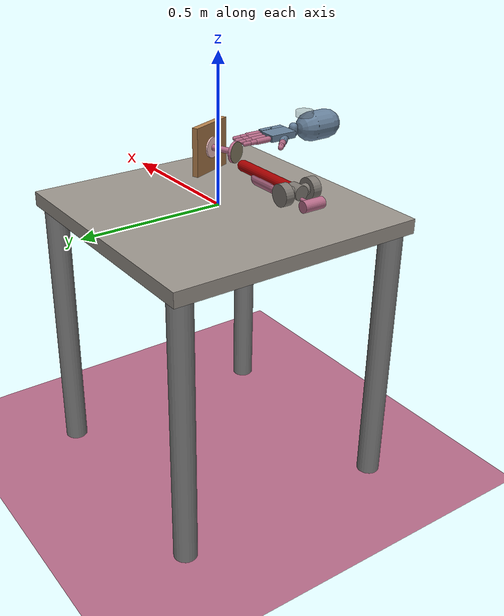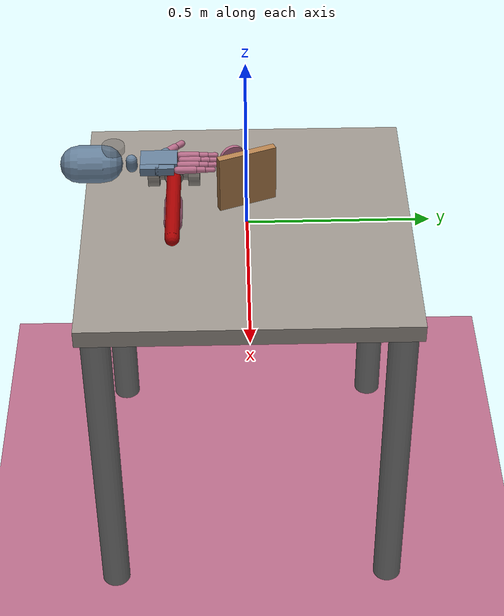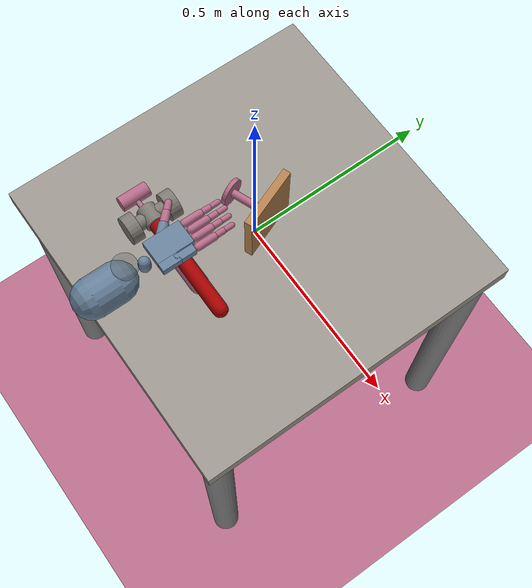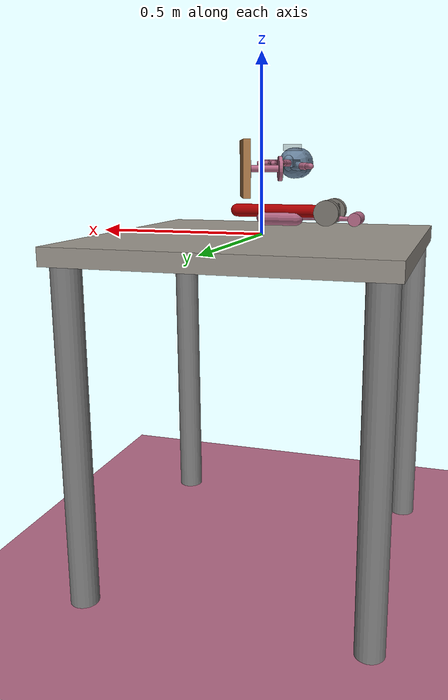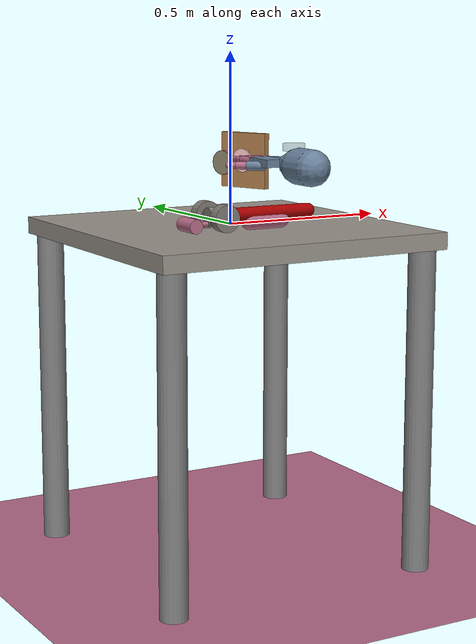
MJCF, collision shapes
<mujoco model='ADROIT-hammer(v1.5)'>

    <default>
        <default class="table"/>

        <default class="board">
            <geom type="box" material="MatWood" />
            <general user="0 1 0.03 0.0939711 0.513477 0.0358776 1.23598 8.40409 0.485031 6.04244 1.02187 0.175297 0.121642 0 0 0" />
        </default>
        <!--            for hammer 2-->
        <default class="hmr_base">
            <joint armature="0.001" damping="2" limited="true"/>
            <geom conaffinity="0" contype="0" group="1" type="mesh"/>
            <position ctrllimited="true" ctrlrange="0 1.57"/>
            <default class="hmr_viz">
                <geom condim="4" type="mesh"/>
            </default>
            <default class="hmr_col">
                <geom conaffinity="1" condim="3" contype="1" group="4" material="hmr_col" solimp="0.99 0.99 0.01" solref="0.01 1"/>
            </default>
        </default>
    </default>
    <asset>
        <texture type="skybox" rgb1="0.42137 0.20392 0.50196" rgb2="0.42137 0.20392 0.50196" builtin="flat" width="200" height="200"/>
        <texture type="2d" name="groundplane" builtin="checker" rgb1="0.2 0.3 0.4" rgb2="0.1 0.2 0.3" width="100" height="100" />
    </asset>

    <!-- ======= CONTACTS ======= -->
    <contact>
        <exclude body1='nail_board' body2='nail'/>
    </contact>

    <!-- ======= SENSORS ======= -->
    <sensor>
        <touch site="S_target" name="S_nail" />
    </sensor>

    <!-- ======= WORLD ======= -->
    <worldbody>
        <light  directional='false' diffuse='.7 .7 .7' specular='0.03 0.03 0.03' pos='-1 -1.0 4.0' dir='1 1.0 -4'/>
        <geom name='ground' size="1.5 1.5 0.25" pos="0 0 -1" type="plane" contype="1" conaffinity="0" material="groundplane" />
        <camera name="fixed" pos="0 -0.7 0.7" quat="0.92388 0.382683 0 0" />
        <!-- Camera for the VIL paper -->
        <camera name="vil_camera" pos="0 -1.2 1.2" quat="0.92388 0.382683 0 0" />
        <camera name="top" pos="0 0 1.1" euler="0 0 3.14" />
        <camera name="diagonally_above" pos="0.5 0.5 1.1" euler="-0.4 0.4 0" />
        <camera name="side" pos="-0.55 -0.35 0.45" euler="0.6 -0.85 3.14" />
        <!-- ======= TABLE ======= -->
        <body name="table" childclass="table">
            <!-- Plane has better contacts -->
            <geom size="0.45 0.45 0.025" pos="0 0 -0.025" type="box" material="tablecube"/>
            <geom size="0.04 0.5" pos="0.4 0.4 -0.501" quat="0 1 0 0" type="cylinder" contype="0" conaffinity="0"/>
            <geom size="0.04 0.5" pos="-0.4 0.4 -0.501" quat="0 1 0 0" type="cylinder" contype="0" conaffinity="0"/>
            <geom size="0.04 0.5" pos="0.4 -0.4 -0.501" quat="0 1 0 0" type="cylinder" contype="0" conaffinity="0"/>
            <geom size="0.04 0.5" pos="-0.4 -0.4 -0.501" quat="0 1 0 0" type="cylinder" contype="0" conaffinity="0"/>
        </body>

        <!-- ======= MOCAP ======= -->
        <body name="vive_tracker" pos="0 -0.35 0.25" mocap="true">
            <inertial pos="0 0 0" mass="0.064" diaginertia="1.70667e-05 1.70667e-05 1.70667e-05" />
            <geom size="0.03 0.01" type="cylinder" contype="0" conaffinity="0" group="3" rgba="0.3 0.3 0.3 0.3" />
        </body>

        <!-- ======= HAND ======= -->
        <body name="forearm" pos="0 -0.7 0.2" euler="-1.57 0 3.14">
            <inertial pos="0.001 -0.002 0.29" quat="0.982037 -0.0160006 0 -0.188007" mass="4" diaginertia="0.01 0.01 0.0075" />
            <joint name="ARRx" pos="0 0 0" axis="1 0 0" range="-0.4 0.25" damping="20" />
            <joint name="ARRy" pos="0 0 0" axis="0 1 0" range="-0.3 0.3" damping="20" />
<!--            rgba="0.97 0.38 0.06 1"-->
            <geom name="V_forearm" class="D_Vizual" pos="0 -.01 .181" euler="0 0 -1.57"  mesh="forearm_simple" />
            <geom name="C_forearm1" class="DC_Hand" size="0.05 0.033" pos="0 0 0.29" type="capsule" rgba="0.4 0.5 0.6 0.1" />

            <!-- ======= Adroit ======= -->
            <include file="DAPG_Adroit.xml"/>
        </body>

        <!-- ======= Nail ======= -->
        <body name="nail_board" pos="0.05 0 0.185245" quat="0.583833 0.583368 -0.399421 -0.399104" user="1001 0 2002 0.05 0 0.1 0.05 0 0.25">
            <inertial pos="0 0 0" mass="0.512" diaginertia="0.00110933 0.00110933 0.00218453" />
            <geom name="board" class="board" size="0.08 0.08 0.01" />
            <site name="nail_goal" pos="0 0 0.01" size="0.034 0.005" type="cylinder" material="MatWood" rgba="1 0.8 0.8 1" />
            <body name="nail" pos="0 0 0">
                <inertial pos="0 0 0.0775281" mass="0.0699004" diaginertia="8.23129e-05 8.23129e-05 2.51426e-05" />
                <joint name="nail_dir" pos="0 0 0" axis="0 0 -1" type="slide" range="-0.01 0.09" frictionloss="2.5" />
                <geom size="0.035 0.005" pos="0 0 0.1" type="cylinder" material="MatFoil" />
                <geom size="0.01 0.05" pos="0 0 0.05" type="cylinder" material="MatFoil" />
                <site name="S_target" pos="0 0 0.101" size="0.034 0.005" type="cylinder" rgba="0 1 0 0.2" />
            </body>
        </body>

        <!-- ======= Hammer 1======= -->
        <body name="Object" pos="0 -0.2 0.035" quat="0.707388 0.706825 0 0">
            <inertial pos="-0.11025 0 0" quat="0.50001 0.49999 0.49999 0.50001" mass="0.253442" diaginertia="0.00349644 0.00345287 8.947e-05" />
            <joint name="OBJTx" pos="0 0 0" axis="1 0 0" type="slide" limited="false" damping="0" />
            <joint name="OBJTy" pos="0 0 0" axis="0 1 0" type="slide" limited="false" damping="0" />
            <joint name="OBJTz" pos="0 0 0" axis="0 0 1" type="slide" limited="false" damping="0" />
            <joint name="OBJRx" pos="0 0 0" axis="1 0 0" limited="false" damping="0.1" />
            <joint name="OBJRy" pos="0 0 0" axis="0 1 0" limited="false" damping="0.1" />
            <joint name="OBJRz" pos="0 0 0" axis="0 0 1" limited="false" damping="0.1" />
            <geom name="handle" size="0.025 0.05" quat="0.707388 0 0.706825 0" type="capsule" condim="4" material="MatWood" />
            <geom name="neck" size="0.007 0.085" pos="-0.14 0 0" quat="0.707388 0 0.706825 0" type="capsule" condim="4" material="hammer1_neck" />
            <geom name="head" size="0.02 0.04" pos="-0.24 0 0" type="cylinder" condim="4" material="hammer1_head" />
            <site name="tool" pos="-0.2 0 -0.04" size="0.01" group="4" rgba="0.4 0.8 0.4 1" />
        </body>

        <!-- ======= Hammer 2======= -->
        <body name="Object" childclass="hmr_base" pos="0 -0.2 0.055" euler="0 0 3.14">
            <joint name="OBJTx" pos="0 0 0" axis="1 0 0" type="slide" limited="false" damping="0" />
            <joint name="OBJTy" pos="0 0 0" axis="0 1 0" type="slide" limited="false" damping="0" />
            <joint name="OBJTz" pos="0 0 0" axis="0 0 1" type="slide" limited="false" damping="0" />
            <joint name="OBJRx" pos="0 0 0" axis="1 0 0" limited="false" damping="0.1" />
            <joint name="OBJRy" pos="0 0 0" axis="0 1 0" limited="false" damping="0.1" />
            <joint name="OBJRz" pos="0 0 0" axis="0 0 1" limited="false" damping="0.1" />
            <geom material="hmr_red" euler="0 1.57 0" size="0.02 0.14" type="capsule" name="HammerHandle"/>
            <geom material="hmr_metal" euler="0 1.57 0" pos="0.16 0 0" size="0.026 0.025" type="cylinder"/>
            <geom material="hmr_metal" euler="1.57 0 0" pos="0.16 0.026 0" size="0.02 0.015" type="cylinder"/>
            <geom material="hmr_metal" euler="1.57 0 0" pos="0.16 0.056 0" size="0.038 0.016" type="cylinder"/>
            <geom material="hmr_metal" euler="1.57 0 0" pos="0.16 -0.056 0" size="0.038 0.016" type="cylinder"/>
            <geom material="hmr_metal" euler="1.57 0 0" pos="0.16 -0.026 0" size="0.02 0.015" type="cylinder"/>
            <geom class="hmr_col" euler="0 1.57 0" size="0.02 0.14" type="capsule" mass=".1"/>
            <geom class="hmr_col" euler="0 1.57 0" pos="0.16 0 0.0" size="0.026 0.025" type="cylinder" mass=".2"/>
            <geom class="hmr_col" euler="1.57 0 0" pos="0.16 0.026 0" size="0.02 0.015" type="cylinder" mass=".1"/>
            <geom class="hmr_col" euler="1.57 0 0" pos="0.16 0.056 0" size="0.038 0.016" type="cylinder" mass=".3"/>
            <geom class="hmr_col" euler="1.57 0 0" pos="0.16 -0.056 0.0" size="0.038 0.016" type="cylinder" mass=".3"/>
            <geom class="hmr_col" euler="1.57 0 0" pos="0.16 -0.026 0.0" size="0.02 0.015" type="cylinder" mass=".1"/>
            <site name="tool" pos="-0.2 0 -0.04" size="0.01" group="4" rgba="0.4 0.8 0.4 1" />
        </body>

    </worldbody>

    <actuator>
        <general name="A_ARRx" joint="ARRx" ctrlrange="-.4 .25" biastype="affine" gainprm="500 0 0" biasprm="0 -200 0" user="1002 0 2001 -0.02 0.02 0 0 0 0 0 0 0 0 0 0 0"/>
        <general name="A_ARRy" joint="ARRy" ctrlrange="-0.3 0.3" biastype="affine" gainprm="500 0 0" biasprm="0 -200 0"/>
    </actuator>
    <include file='DAPG_assets.xml'/>
</mujoco>

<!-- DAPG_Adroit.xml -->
<mujocoinclude>
    <body name="wrist" pos="0 0 0.396">
        <inertial pos="0.003 0 0.016" quat="0.504234 0.49623 0.49523 0.504234" mass="0.3" diaginertia="0.001 0.001 0.001" />
        <joint name="WRJ1" pos="0 0 0" axis="0 1 0" range="-0.524 0.175" armature="0.005" damping="0.5" user="1123" />
        <geom name="V_wrist" class="D_Vizual" mesh="wrist" />
        <geom name="C_wrist" class="DC_Hand" size="0.015 0.01" quat="0.707107 0.707107 0 0" type="capsule" rgba="0.4 0.5 0.6 0.1" />
        <body name="palm" pos="0 0 0.034">
            <inertial pos="0.006 0 0.036" quat="0.715833 0.0439898 0.0749825 0.692839" mass="0.3" diaginertia="0.001 0.001 0.001" />
            <joint name="WRJ0" pos="0 0 0" axis="1 0 0" range="-0.785 0.611" armature="0.005" damping="0.5" user="1122" />
            <geom name="V_palm" class="D_Vizual" mesh="palm" />
            <geom name="C_palm0" class="DC_Hand" size="0.032 0.0111 0.049" pos="0.011 0 0.038" type="box" rgba="0.4 0.5 0.6 0.1" />
            <geom name="C_palm1" class="DC_Hand" size="0.011 0.0111 0.025" pos="-0.032 0 0.014" type="box" rgba="0.4 0.5 0.6 0.1" />
            <site name="S_grasp"  type="sphere" rgba="0 0 0 0" size="0.01" pos=".007 -.05 0.07" quat="0.0087 -0.6 -0.0034 -0.81  " />
            <site class="D_Touch" name="Tch_ffmetacarpal" size="0.009 0.004 0.006" pos="0.033 -.008 .078"/>
            <site class="D_Touch" name="Tch_mfmetacarpal" size="0.009 0.004 0.014" pos="0.011 -.008 .074"/>
            <site class="D_Touch" name="Tch_rfmetacarpal" size="0.009 0.004 0.016" pos="-0.011 -.008 .068"/>
            <site class="D_Touch" name="Tch_thmetacarpal" size="0.008 0.004 0.015" pos="0.006 -.008 .042" euler="0 0.57 0"/>
            <site class="D_Touch" name="Tch_palm" size="0.012 0.004 0.016" pos="-0.017 -.008 .024" euler="0 -1 0"/>

            <body name="ffknuckle" pos="0.033 0 0.095">
                <inertial pos="0 0 0" quat="0.520062 0.854102 0.00600072 -0.00300036" mass="0.008" diaginertia="1e-05 1e-05 1e-05" />
                <joint name="FFJ3" pos="0 0 0" axis="0 1 0" range="-0.436 0.436" user="1103" />
                <geom name="V_ffknuckle" class="D_Vizual" mesh="knuckle" />
                <body name="ffproximal" pos="0 0 0">
                    <inertial pos="0 0 0.023" quat="0.707095 -0.00400054 0.00400054 0.707095" mass="0.014" diaginertia="1e-05 1e-05 1e-05" />
                    <joint name="FFJ2" pos="0 0 0" axis="1 0 0" range="0 1.571" user="1102" />
                    <geom name="V_ffproximal" class="D_Vizual" mesh="F3" />
                    <geom name="C_ffproximal" class="DC_Hand" size="0.01 0.0225" pos="0 0 0.0225" type="capsule" />
                    <site class="D_Touch" name="Tch_ffproximal" size="0.009 0.004 0.012" pos="0 -.007 .022"/>
                    <body name="ffmiddle" pos="0 0 0.045">
                        <inertial pos="0 0 0.011" quat="0.707107 0 0 0.707107" mass="0.012" diaginertia="1e-05 1e-05 1e-05" />
                        <joint name="FFJ1" pos="0 0 0" axis="1 0 0" range="0 1.571" user="1101" />
                        <geom name="V_ffmiddle" class="D_Vizual" mesh="F2" />
                        <geom name="C_ffmiddle" class="DC_Hand" size="0.00805 0.0125" pos="0 0 0.0125" type="capsule" />
                        <site class="D_Touch" name="Tch_ffmiddle" size="0.009 0.002 0.007" pos="0 -.007 .013"/>
                        <body name="ffdistal" pos="0 0 0.025">
                            <inertial pos="0 0 0.015" quat="0.7071 -0.00300043 0.00300043 0.7071" mass="0.01" diaginertia="1e-05 1e-05 1e-05" />
                            <joint name="FFJ0" pos="0 0 0" axis="1 0 0" range="0 1.571" user="1100" />
                            <geom name="V_ffdistal" class="D_Vizual" pos="0 0 0.001" mesh="F1" />
                            <geom name="C_ffdistal" class="DC_Hand" size="0.00705 0.012" pos="0 0 0.012" type="capsule" condim="4" />
                            <site name="S_fftip" pos="0 0 0.026" group="3" />
                            <site name="Tch_fftip" class="D_Touch" pos="0 -0.004 0.018" />
                        </body>
                    </body>
                </body>
            </body>
            <body name="mfknuckle" pos="0.011 0 0.099">
                <inertial pos="0 0 0" quat="0.520062 0.854102 0.00600072 -0.00300036" mass="0.008" diaginertia="1e-05 1e-05 1e-05" />
                <joint name="MFJ3" pos="0 0 0" axis="0 1 0" range="-0.436 0.436" user="1107" />
                <geom name="V_mfknuckle" class="D_Vizual" mesh="knuckle" />
                <body name="mfproximal" pos="0 0 0">
                    <inertial pos="0 0 0.023" quat="0.707095 -0.00400054 0.00400054 0.707095" mass="0.014" diaginertia="1e-05 1e-05 1e-05" />
                    <joint name="MFJ2" pos="0 0 0" axis="1 0 0" range="0 1.571" user="1106" />
                    <geom name="V_mfproximal" class="D_Vizual" mesh="F3" />
                    <geom name="C_mfproximal" class="DC_Hand" size="0.01 0.0225" pos="0 0 0.0225" type="capsule" />
                    <site class="D_Touch" name="Tch_mfproximal" size="0.009 0.004 0.012" pos="0 -.007 .022"/><body name="mfmiddle" pos="0 0 0.045">
                        <inertial pos="0 0 0.012" quat="0.707107 0 0 0.707107" mass="0.012" diaginertia="1e-05 1e-05 1e-05" />
                        <joint name="MFJ1" pos="0 0 0" axis="1 0 0" range="0 1.571" user="1105" />
                        <geom name="V_mfmiddle" class="D_Vizual" mesh="F2" />
                        <geom name="C_mfmiddle" class="DC_Hand" size="0.00805 0.0125" pos="0 0 0.0125" type="capsule" />
                        <site class="D_Touch" name="Tch_mfmiddle" size="0.009 0.002 0.007" pos="0 -.007 .013"/>
                        <body name="mfdistal" pos="0 0 0.025">
                            <inertial pos="0 0 0.015" quat="0.7071 -0.00300043 0.00300043 0.7071" mass="0.01" diaginertia="1e-05 1e-05 1e-05" />
                            <joint name="MFJ0" pos="0 0 0" axis="1 0 0" range="0 1.571" user="1104" />
                            <geom name="V_mfdistal" class="D_Vizual" mesh="F1" />
                            <geom name="C_mfdistal" class="DC_Hand" size="0.00705 0.012" pos="0 0 0.012" type="capsule" condim="4" />
                            <site name="S_mftip" pos="0 0 0.026" group="3" />
                            <site name="Tch_mftip" class="D_Touch" pos="0 -0.004 0.018" />
                        </body>
                    </body>
                </body>
            </body>
            <body name="rfknuckle" pos="-0.011 0 0.095">
                <inertial pos="0 0 0" quat="0.520062 0.854102 0.00600072 -0.00300036" mass="0.008" diaginertia="1e-05 1e-05 1e-05" />
                <joint name="RFJ3" pos="0 0 0" axis="0 1 0" range="-0.436 0.436" user="1111" />
                <geom name="V_rfknuckle" class="D_Vizual" mesh="knuckle" />
                <body name="rfproximal" pos="0 0 0">
                    <inertial pos="0 0 0.023" quat="0.707095 -0.00400054 0.00400054 0.707095" mass="0.014" diaginertia="1e-05 1e-05 1e-05" />
                    <joint name="RFJ2" pos="0 0 0" axis="1 0 0" range="0 1.571" user="1110" />
                    <geom name="V_rfproximal" class="D_Vizual" mesh="F3" />
                    <geom name="C_rfproximal" class="DC_Hand" size="0.01 0.0225" pos="0 0 0.0225" type="capsule" />
                    <site class="D_Touch" name="Tch_rfproximal" size="0.009 0.004 0.012" pos="0 -.007 .022"/>
                    <body name="rfmiddle" pos="0 0 0.045">
                        <inertial pos="0 0 0.012" quat="0.707107 0 0 0.707107" mass="0.012" diaginertia="1e-05 1e-05 1e-05" />
                        <joint name="RFJ1" pos="0 0 0" axis="1 0 0" range="0 1.571" user="1109" />
                        <geom name="V_rfmiddle" class="D_Vizual" mesh="F2" />
                        <geom name="C_rfmiddle" class="DC_Hand" size="0.00805 0.0125" pos="0 0 0.0125" type="capsule" />
                        <site class="D_Touch" name="Tch_rfmiddle" size="0.009 0.002 0.007" pos="0 -.007 .013"/>
                        <body name="rfdistal" pos="0 0 0.025">
                            <inertial pos="0 0 0.015" quat="0.7071 -0.00300043 0.00300043 0.7071" mass="0.01" diaginertia="1e-05 1e-05 1e-05" />
                            <joint name="RFJ0" pos="0 0 0" axis="1 0 0" range="0 1.571" user="1108" />
                            <geom name="V_rfdistal" class="D_Vizual" pos="0 0 0.001" mesh="F1" />
                            <geom name="C_rfdistal" class="DC_Hand" size="0.00705 0.012" pos="0 0 0.012" type="capsule" condim="4" />
                            <site name="S_rftip" pos="0 0 0.026" group="3" />
                            <site name="Tch_rftip" class="D_Touch" pos="0 -0.004 0.018" />
                        </body>
                    </body>
                </body>
            </body>
            <body name="lfmetacarpal" pos="-0.017 0 0.044">
                <inertial pos="-0.014 0.001 0.014" quat="0.709167 -0.0920216 -0.0630148 0.696164" mass="0.075" diaginertia="1e-05 1e-05 1e-05" />
                <joint name="LFJ4" pos="0 0 0" axis="0.570977 0 0.820966" range="0 0.698" user="1116" />
                <geom name="V_lfmetacarpal" class="D_Vizual" pos="-0.016 0 -0.023" mesh="lfmetacarpal" />
                <geom name="C_lfmetacarpal" class="DC_Hand" size="0.0095 0.0111 0.025" pos="-0.0165 0 0.01" type="box" rgba="0.4 0.5 0.6 0.2" />
                <site class="D_Touch" name="Tch_lfmetacarpal" size="0.009 0.004 0.014" pos="-0.016 -.008 .017"/>
                <body name="lfknuckle" pos="-0.017 0 0.044">
                    <inertial pos="0 0 0" quat="0.520062 0.854102 0.00600072 -0.00300036" mass="0.008" diaginertia="1e-05 1e-05 1e-05" />
                    <joint name="LFJ3" pos="0 0 0" axis="0 1 0" range="-0.436 0.436" user="1115" />
                    <geom name="V_lfknuckle" class="D_Vizual" mesh="knuckle" />
                    <body name="lfproximal" pos="0 0 0">
                        <inertial pos="0 0 0.023" quat="0.707095 -0.00400054 0.00400054 0.707095" mass="0.014" diaginertia="1e-05 1e-05 1e-05" />
                        <joint name="LFJ2" pos="0 0 0" axis="1 0 0" range="0 1.571" user="1114" />
                        <geom name="V_lfproximal" class="D_Vizual" mesh="F3" />
                        <geom name="C_lfproximal" class="DC_Hand" size="0.01 0.0225" pos="0 0 0.0225" type="capsule" />
                        <site class="D_Touch" name="Tch_lfproximal" size="0.009 0.004 0.012" pos="0 -.007 .022"/>
                        <body name="lfmiddle" pos="0 0 0.045">
                            <inertial pos="0 0 0.012" quat="0.707107 0 0 0.707107" mass="0.012" diaginertia="1e-05 1e-05 1e-05" />
                            <joint name="LFJ1" pos="0 0 0" axis="1 0 0" range="0 1.571" user="1113" />
                            <geom name="V_lfmiddle" class="D_Vizual" mesh="F2" />
                            <geom name="C_lfmiddle" class="DC_Hand" size="0.00805 0.0125" pos="0 0 0.0125" type="capsule" />
                            <site class="D_Touch" name="Tch_lfmiddle" size="0.009 0.002 0.007" pos="0 -.007 .013"/>
                            <body name="lfdistal" pos="0 0 0.025">
                                <inertial pos="0 0 0.015" quat="0.7071 -0.00300043 0.00300043 0.7071" mass="0.01" diaginertia="1e-05 1e-05 1e-05" />
                                <joint name="LFJ0" pos="0 0 0" axis="1 0 0" range="0 1.571" user="1112" />
                                <geom name="V_lfdistal" class="D_Vizual" pos="0 0 0.001" mesh="F1" />
                                <geom name="C_lfdistal" class="DC_Hand" size="0.00705 0.012" pos="0 0 0.012" type="capsule" condim="4" />
                                <site name="S_lftip" pos="0 0 0.026" group="3" />
                                <site name="Tch_lftip" class="D_Touch" pos="0 -0.004 0.018" />
                            </body>
                        </body>
                    </body>
                </body>
            </body>
            <body name="thbase" pos="0.034 -0.009 0.029" quat="0.923956 0 0.382499 0">
                <inertial pos="0 0 0" mass="0.01" diaginertia="1e-05 1e-05 1e-05" />
                <joint name="THJ4" pos="0 0 0" axis="0 0 -1" range="-1.047 1.047" user="1121" />
                <geom name="V_thbase" size="0.001 0.001 0.001" type="box" group="1" />
                <body name="thproximal" pos="0 0 0">
                    <inertial pos="0 0 0.017" quat="0.981604 0 0.000999597 0.190923" mass="0.016" diaginertia="1e-05 1e-05 1e-05" />
                    <joint name="THJ3" pos="0 0 0" axis="1 0 0" range="0 1.309" user="1120" />
                    <geom name="V_thproximal" class="D_Vizual" mesh="TH3_z" />
                    <geom name="C_thproximal" class="DC_Hand" size="0.013 0.019" pos="0 0 0.019" type="capsule" rgba="0.4 0.5 0.6 0.1" />
                    <site class="D_Touch" name="Tch_thproximal" size="0.005 0.011 0.011" pos="-.008 0 0.022"/>
                    <body name="thhub" pos="0 0 0.038">
                        <inertial pos="0 0 0" mass="0.002" diaginertia="1e-05 1e-05 1e-05" />
                        <joint name="THJ2" pos="0 0 0" axis="1 0 0" range="-0.262 0.262" user="1119" />
                        <geom name="V_thhub" size="0.001 0.001 0.001" type="box" group="1" />
                        <body name="thmiddle" pos="0 0 0">
                            <inertial pos="0 0 0.016" quat="0.999971 -0.000999971 -0.00699979 0.00299991" mass="0.016" diaginertia="1e-05 1e-05 1e-05" />
                            <joint name="THJ1" pos="0 0 0" axis="0 1 0" range="-0.524 0.524" user="1118" />
                            <geom name="V_thmiddle" class="D_Vizual" mesh="TH2_z" />
                            <geom name="C_thmiddle" class="DC_Hand" size="0.011 0.016" pos="0 0 0.016" type="capsule" />
                            <site class="D_Touch" name="Tch_thmiddle" size="0.005 0.011 0.011" pos="-.008 0 0.018" />
                            <body name="thdistal" pos="0 0 0.032">
                                <inertial pos="0 0 0.016" quat="0.99887 -0.00499935 -0.0469939 0.00499935" mass="0.016" diaginertia="1e-05 1e-05 1e-05" />
                                <joint name="THJ0" pos="0 0 0" axis="0 1 0" range="-1.571 0" user="1117" />
                                <geom name="V_thdistal" class="D_Vizual" mesh="TH1_z" />
                                <geom name="C_thdistal" class="DC_Hand" size="0.00918 0.013" pos="0 0 0.013" type="capsule" condim="4" />
                                <site name="S_thtip" pos="0 0 0.0275" group="3" />
                                <site name="Tch_thtip" class="D_Touch" pos="-0.005 0 0.02" size="0.005 0.011 0.016" />
                            </body>
                        </body>
                    </body>
                </body>
            </body>
        </body>
    </body>
</mujocoinclude>

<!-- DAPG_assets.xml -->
<mujocoinclude><compiler angle="radian" meshdir="../../../../dependencies/Adroit/resources/meshes/" texturedir="../../../../dependencies/Adroit/resources/textures/"></compiler><option apirate="200" iterations="20" noslip_iterations="20"></option><size njmax="500" nconmax="100" nstack="600000" nuser_body="9" nuser_jnt="1" nuser_site="1" nuser_tendon="1" nuser_actuator="16" nuser_sensor="1"></size><visual><global offwidth="3024" offheight="1680"></global><quality shadowsize="4096" offsamples="8"></quality><map force="0.1" fogend="5"></map></visual><default class="main"><mesh scale="0.001 0.001 0.001"></mesh><joint limited="true" margin="0.01" armature="0.001" damping="0.05" frictionloss="0.001"></joint><geom friction="1 0.5 0.01" margin="0.0005" rgba="0.7070727263594109 0.4136353124706034 0.5283268140016502 1"></geom><site size="0.005 0 0" rgba="0.4 0.9 0.4 1"></site><tendon limited="true"></tendon><general ctrllimited="true" ctrlrange="-1 1" user="0 1 0.03 0.0939711 0.513477 0.0358776 1.23598 8.40409 0.485031 6.04244 1.02187 0.175297 0.121642 0 0 0"></general><default class="D_Touch"><site size="0.009 0.004 0.013" group="4" type="box" rgba="0.8 0.8 0.8 0.15"></site><general user="0 1 0.03 0.0939711 0.513477 0.0358776 1.23598 8.40409 0.485031 6.04244 1.02187 0.175297 0.121642 0 0 0"></general></default><default class="DC_Hand"><geom conaffinity="0" group="4" material="MatColl"></geom><general user="0 1 0.03 0.0939711 0.513477 0.0358776 1.23598 8.40409 0.485031 6.04244 1.02187 0.175297 0.121642 0 0 0"></general></default><default class="D_Vizual"><geom type="mesh" contype="0" conaffinity="0" group="1" material="MatViz"></geom><general user="0 1 0.03 0.0939711 0.513477 0.0358776 1.23598 8.40409 0.485031 6.04244 1.02187 0.175297 0.121642 0 0 0"></general></default><default class="free"><joint type="free" limited="false" armature="0" damping="0"></joint><general user="0 1 0.03 0.0939711 0.513477 0.0358776 1.23598 8.40409 0.485031 6.04244 1.02187 0.175297 0.121642 0 0 0"></general></default></default><asset><material name="tablecube" texture="table_easy3" rgba="0.8 0.8 0.8 1"></material><material name="penholder" rgba=".6 .6 .6 1"></material><material name="hammer1_neck" rgba="1 1 1 1"></material><material name="hammer1_head" rgba="0.4 0.4 0.4 1"></material><material name="hmr_col" rgba="0.3 0.3 1.0 0.5" shininess="0" specular="0"></material><material name="hmr_red" rgba=".65 0 0 1" shininess="1" reflectance=".7" specular=".5"></material><material name="hmr_metal" texture="T_hmr_met" rgba=".65 .65 .65 1" shininess="1" reflectance=".7" specular=".5"></material><material name="hmr_wood" texture="T_hmr_wood" shininess="1" reflectance=".7" specular=".5"></material><material name="MatColl" specular="1" shininess="0.3" reflectance="0.5" rgba="0.4 0.5 0.6 1"></material><material name="MatViz" specular="0.75" shininess="0.1" reflectance="0.5" rgba="0.9 0.7 0.5 1"></material><material name="MatGnd" specular="0.3" shininess="0.3" reflectance="0.3" rgba="0.5 0.55 0.5 1"></material><material name="object" texture="texgeom"></material><material name="groundplane" texture="groundplane" texrepeat="10 10"></material><material name="table2d" texture="marble2d" reflectance="0.3" rgba="0.8 0.8 0.8 1"></material><material name="MatFoil" texture="foil" specular="1" shininess="0.3" rgba="0.9 0.9 0.9 1"></material><material name="MatPlane" specular="0.3" shininess="0.3" rgba="0.3 0.3 0.2 1"></material><material name="MatWood" texture="wood" texrepeat="3 3" specular="0.4" shininess="0.1"></material><material name="MatSquare" texture="square" specular="1" shininess="0.6" rgba="0.8 0.8 0.8 1"></material><material name="MatWoodR" texture="wood" specular="1" shininess="0.3" rgba="1 0.5 0.5 1"></material><material name="MatWoodG" texture="wood" specular="1" shininess="0.3" rgba="0.2 1 0.2 1"></material><material name="MatWoodB" texture="woodb" specular="1" shininess="0.3"></material><texture name="T_hmr_met" type="cube" file="metal1.png"></texture><texture name="T_hmr_wood" type="cube" file="wood1.png"></texture><texture type="cube" name="texgeom" builtin="flat" mark="cross" rgb1="0.3 0.6 0.5" rgb2="0.3 0.6 0.5" width="127" height="762"></texture><texture type="cube" name="wood" file="wood.png"></texture><texture type="2d" name="wood2d" file="wood.png"></texture><texture type="cube" name="square" file="square.png"></texture><texture type="cube" name="foil" file="silverRaw.png"></texture><texture type="cube" name="woodb" file="woodb.png"></texture><texture type="2d" name="marble2d" file="marble.png"></texture><texture type="cube" name="marblecube" file="marble.png"></texture><texture type="cube" name="table_original" file="marble.png"></texture><texture type="cube" name="table_easy0" file="marble2.png"></texture><texture type="cube" name="table_easy1" file="metal2.png"></texture><texture type="cube" name="table_easy2" file="metal1.png"></texture><texture type="cube" name="table_easy3" file="skin.png"></texture><texture type="cube" name="table_easy4" file="light_wood_v2.png"></texture><texture type="cube" name="table_easy5" file="wood1.png"></texture><texture type="cube" name="table_easy6" file="woodb.png"></texture><texture type="cube" name="table_easy7" file="floor1.png"></texture><texture type="cube" name="table_easy8" file="granite.png"></texture><texture type="cube" name="table_easy9" file="metal.png"></texture><texture type="cube" name="table_hard0" file="city1.png"></texture><texture type="cube" name="table_hard1" file="city2.png"></texture><texture type="cube" name="table_hard2" file="city3.png"></texture><texture type="cube" name="table_hard3" file="foil.png"></texture><texture type="cube" name="table_hard4" file="silverRaw.png"></texture><texture type="cube" name="table_hard5" file="square.png"></texture><texture type="cube" name="table_hard6" file="darkwood.png"></texture><texture type="cube" name="table_hard7" file="brick1.png"></texture><texture type="cube" name="table_hard8" file="tennis.png"></texture><texture type="cube" name="table_hard9" file="wood4.png"></texture><mesh scale="1 1 1" file="hammerblock.stl" name="hammerblock"></mesh><mesh scale="1 1 1" file="nail.stl" name="nail"></mesh><mesh scale="1 1 1" file="hammerhandle.stl" name="hammerhandle"></mesh><mesh name="forearm_simple" file="forearm_simple.stl" scale="1 1 1"></mesh><mesh name="wrist" file="wrist.stl"></mesh><mesh name="palm" file="palm.stl"></mesh><mesh name="lfmetacarpal" file="lfmetacarpal.stl"></mesh><mesh name="knuckle" file="knuckle.stl"></mesh><mesh name="F3" file="F3.stl"></mesh><mesh name="F2" file="F2.stl"></mesh><mesh name="F1" file="F1.stl"></mesh><mesh name="TH3_z" file="TH3_z.stl"></mesh><mesh name="TH2_z" file="TH2_z.stl"></mesh><mesh name="TH1_z" file="TH1_z.stl"></mesh></asset><contact><pair geom1="C_palm0" geom2="C_thdistal" condim="1"></pair><pair geom1="C_ffproximal" geom2="C_mfproximal" condim="1"></pair><pair geom1="C_ffproximal" geom2="C_thdistal" condim="1"></pair><pair geom1="C_ffmiddle" geom2="C_thdistal" condim="1"></pair><pair geom1="C_ffdistal" geom2="C_mfdistal" condim="1"></pair><pair geom1="C_ffdistal" geom2="C_thdistal" condim="1"></pair><pair geom1="C_mfproximal" geom2="C_rfproximal" condim="1"></pair><pair geom1="C_mfproximal" geom2="C_thdistal" condim="1"></pair><pair geom1="C_mfdistal" geom2="C_rfdistal" condim="1"></pair><pair geom1="C_mfdistal" geom2="C_lfdistal" condim="1"></pair><pair geom1="C_mfdistal" geom2="C_thdistal" condim="1"></pair><pair geom1="C_rfproximal" geom2="C_lfproximal" condim="1"></pair><pair geom1="C_rfmiddle" geom2="C_lfmiddle" condim="1"></pair><pair geom1="C_rfmiddle" geom2="C_lfdistal" condim="1"></pair><pair geom1="C_rfdistal" geom2="C_lfmiddle" condim="1"></pair><pair geom1="C_rfdistal" geom2="C_lfdistal" condim="1"></pair><pair geom1="C_rfdistal" geom2="C_lfdistal" condim="1"></pair><pair geom1="C_rfdistal" geom2="C_thdistal" condim="1"></pair><pair geom1="C_lfdistal" geom2="C_thdistal" condim="1"></pair></contact><tendon><fixed name="T_WRJ1r" range="-0.032 0.032" user="1236"><joint joint="WRJ1" coef="0.018"></joint></fixed><fixed name="T_WRJ1l" range="-0.032 0.032" user="1237"><joint joint="WRJ1" coef="-0.018"></joint></fixed><fixed name="T_WRJ0u" range="-0.032 0.032" user="1236"><joint joint="WRJ0" coef="0.018"></joint></fixed><fixed name="T_WRJ0d" range="-0.032 0.032" user="1237"><joint joint="WRJ0" coef="-0.018"></joint></fixed><fixed name="T_FFJ3r" range="-0.018 0.018" user="1204"><joint joint="FFJ3" coef="0.01"></joint></fixed><fixed name="T_FFJ3l" range="-0.018 0.018" user="1205"><joint joint="FFJ3" coef="-0.01"></joint></fixed><fixed name="T_FFJ2u" range="-0.007 0.03" user="1202"><joint joint="FFJ2" coef="0.01"></joint></fixed><fixed name="T_FFJ2d" range="-0.03 0.007" user="1203"><joint joint="FFJ2" coef="-0.01"></joint></fixed><fixed name="T_FFJ1c" range="-0.001 0.001"><joint joint="FFJ0" coef="0.00705"></joint><joint joint="FFJ1" coef="-0.00805"></joint></fixed><fixed name="T_FFJ1u" range="-0.007 0.03" user="1200"><joint joint="FFJ0" coef="0.00705"></joint><joint joint="FFJ1" coef="0.00805"></joint></fixed><fixed name="T_FFJ1d" range="-0.03 0.007" user="1201"><joint joint="FFJ0" coef="-0.00705"></joint><joint joint="FFJ1" coef="-0.00805"></joint></fixed><fixed name="T_MFJ3r" range="-0.018 0.018" user="1210"><joint joint="MFJ3" coef="0.01"></joint></fixed><fixed name="T_MFJ3l" range="-0.018 0.018" user="1211"><joint joint="MFJ3" coef="-0.01"></joint></fixed><fixed name="T_MFJ2u" range="-0.007 0.03" user="1208"><joint joint="MFJ2" coef="0.01"></joint></fixed><fixed name="T_MFJ2d" range="-0.03 0.007" user="1209"><joint joint="MFJ2" coef="-0.01"></joint></fixed><fixed name="T_MFJ1c" range="-0.001 0.001"><joint joint="MFJ0" coef="0.00705"></joint><joint joint="MFJ1" coef="-0.00805"></joint></fixed><fixed name="T_MFJ1u" range="-0.007 0.03" user="1206"><joint joint="MFJ0" coef="0.00705"></joint><joint joint="MFJ1" coef="0.00805"></joint></fixed><fixed name="T_MFJ1d" range="-0.03 0.007" user="1207"><joint joint="MFJ0" coef="-0.00705"></joint><joint joint="MFJ1" coef="-0.00805"></joint></fixed><fixed name="T_RFJ3r" range="-0.018 0.018" user="1216"><joint joint="RFJ3" coef="0.01"></joint></fixed><fixed name="T_RFJ3l" range="-0.018 0.018" user="1217"><joint joint="RFJ3" coef="-0.01"></joint></fixed><fixed name="T_RFJ2u" range="-0.007 0.03" user="1214"><joint joint="RFJ2" coef="0.01"></joint></fixed><fixed name="T_RFJ2d" range="-0.03 0.007" user="1215"><joint joint="RFJ2" coef="-0.01"></joint></fixed><fixed name="T_RFJ1c" range="-0.001 0.001"><joint joint="RFJ0" coef="0.00705"></joint><joint joint="RFJ1" coef="-0.00805"></joint></fixed><fixed name="T_RFJ1u" range="-0.007 0.03" user="1212"><joint joint="RFJ0" coef="0.00705"></joint><joint joint="RFJ1" coef="0.00805"></joint></fixed><fixed name="T_RFJ1d" range="-0.03 0.007" user="1213"><joint joint="RFJ0" coef="-0.00705"></joint><joint joint="RFJ1" coef="-0.00805"></joint></fixed><fixed name="T_LFJ4u" range="-0.007 0.03" user="1224"><joint joint="LFJ4" coef="0.01"></joint></fixed><fixed name="T_LFJ4d" range="-0.03 0.007" user="1225"><joint joint="LFJ4" coef="-0.01"></joint></fixed><fixed name="T_LFJ3r" range="-0.018 0.018" user="1222"><joint joint="LFJ3" coef="0.01"></joint></fixed><fixed name="T_LFJ3l" range="-0.018 0.018" user="1223"><joint joint="LFJ3" coef="-0.01"></joint></fixed><fixed name="T_LFJ2u" range="-0.007 0.03" user="1220"><joint joint="LFJ2" coef="0.01"></joint></fixed><fixed name="T_LFJ2d" range="-0.03 0.007" user="1221"><joint joint="LFJ2" coef="-0.01"></joint></fixed><fixed name="T_LFJ1c" range="-0.001 0.001"><joint joint="LFJ0" coef="0.00705"></joint><joint joint="LFJ1" coef="-0.00805"></joint></fixed><fixed name="T_LFJ1u" range="-0.007 0.03" user="1218"><joint joint="LFJ0" coef="0.00705"></joint><joint joint="LFJ1" coef="0.00805"></joint></fixed><fixed name="T_LFJ1d" range="-0.03 0.007" user="1219"><joint joint="LFJ0" coef="-0.00705"></joint><joint joint="LFJ1" coef="-0.00805"></joint></fixed><fixed name="T_THJ4a" range="-0.018 0.018" user="1234"><joint joint="THJ4" coef="0.01636"></joint></fixed><fixed name="T_THJ4c" range="-0.018 0.018" user="1235"><joint joint="THJ4" coef="-0.01636"></joint></fixed><fixed name="T_THJ3u" range="-0.007 0.03" user="1232"><joint joint="THJ3" coef="0.01"></joint></fixed><fixed name="T_THJ3d" range="-0.03 0.007" user="1233"><joint joint="THJ3" coef="-0.01"></joint></fixed><fixed name="T_THJ2u" range="-0.018 0.018" user="1230"><joint joint="THJ2" coef="0.011"></joint></fixed><fixed name="T_THJ2d" range="-0.018 0.018" user="1231"><joint joint="THJ2" coef="-0.011"></joint></fixed><fixed name="T_THJ1r" range="-0.018 0.018" user="1228"><joint joint="THJ1" coef="0.011"></joint></fixed><fixed name="T_THJ1l" range="-0.018 0.018" user="1229"><joint joint="THJ1" coef="-0.011"></joint></fixed><fixed name="T_THJ0r" range="-0.03 0.007" user="1226"><joint joint="THJ0" coef="0.009"></joint></fixed><fixed name="T_THJ0l" range="-0.007 0.03" user="1227"><joint joint="THJ0" coef="-0.009"></joint></fixed></tendon><actuator><general name="A_WRJ1" joint="WRJ1" ctrlrange="-0.524 0.175" biastype="affine" gainprm="10 0 0" biasprm="0 -10 0" user="1002 0 2001 -0.02 0.02 0 0 0 0 0 0 0 0 0 0 0"></general><general name="A_WRJ0" joint="WRJ0" ctrlrange="-0.79 0.61" biastype="affine" gainprm="10 0 0" biasprm="0 -10 0" user="1002 0 2001 -0.02 0.02 0 0 0 0 0 0 0 0 0 0 0"></general><general name="A_FFJ3" joint="FFJ3" ctrlrange="-0.44 0.44" biastype="affine" biasprm="0 -1 0" user="1002 0 2001 -0.1 0.1 0 0 0 0 0 0 0 0 0 0 0"></general><general name="A_FFJ2" joint="FFJ2" ctrlrange="0 1.6" biastype="affine" biasprm="0 -1 0" user="1002 0 2001 -0.1 0.1 0 0 0 0 0 0 0 0 0 0 0"></general><general name="A_FFJ1" joint="FFJ1" ctrlrange="0 1.6" biastype="affine" biasprm="0 -1 0" user="1002 0 2001 -0.1 0.1 0 0 0 0 0 0 0 0 0 0 0"></general><general name="A_FFJ0" joint="FFJ0" ctrlrange="0 1.6" biastype="affine" biasprm="0 -1 0" user="1002 0 2001 -0.1 0.1 0 0 0 0 0 0 0 0 0 0 0"></general><general name="A_MFJ3" joint="MFJ3" ctrlrange="-0.44 0.44" biastype="affine" biasprm="0 -1 0" user="1002 0 2001 -0.1 0.1 0 0 0 0 0 0 0 0 0 0 0"></general><general name="A_MFJ2" joint="MFJ2" ctrlrange="0 1.6" biastype="affine" biasprm="0 -1 0" user="1002 0 2001 -0.1 0.1 0 0 0 0 0 0 0 0 0 0 0"></general><general name="A_MFJ1" joint="MFJ1" ctrlrange="0 1.6" biastype="affine" biasprm="0 -1 0" user="1002 0 2001 -0.1 0.1 0 0 0 0 0 0 0 0 0 0 0"></general><general name="A_MFJ0" joint="MFJ0" ctrlrange="0 1.6" biastype="affine" biasprm="0 -1 0" user="1002 0 2001 -0.1 0.1 0 0 0 0 0 0 0 0 0 0 0"></general><general name="A_RFJ3" joint="RFJ3" ctrlrange="-0.44 0.44" biastype="affine" biasprm="0 -1 0" user="1002 0 2001 -0.1 0.1 0 0 0 0 0 0 0 0 0 0 0"></general><general name="A_RFJ2" joint="RFJ2" ctrlrange="0 1.6" biastype="affine" biasprm="0 -1 0" user="1002 0 2001 -0.1 0.1 0 0 0 0 0 0 0 0 0 0 0"></general><general name="A_RFJ1" joint="RFJ1" ctrlrange="0 1.6" biastype="affine" biasprm="0 -1 0" user="1002 0 2001 -0.1 0.1 0 0 0 0 0 0 0 0 0 0 0"></general><general name="A_RFJ0" joint="RFJ0" ctrlrange="0 1.6" biastype="affine" biasprm="0 -1 0" user="1002 0 2001 -0.1 0.1 0 0 0 0 0 0 0 0 0 0 0"></general><general name="A_LFJ4" joint="LFJ4" ctrlrange="0 0.7" biastype="affine" biasprm="0 -1 0" user="1002 0 2001 -0.1 0.1 0 0 0 0 0 0 0 0 0 0 0"></general><general name="A_LFJ3" joint="LFJ3" ctrlrange="-0.44 0.44" biastype="affine" biasprm="0 -1 0" user="1002 0 2001 -0.1 0.1 0 0 0 0 0 0 0 0 0 0 0"></general><general name="A_LFJ2" joint="LFJ2" ctrlrange="0 1.6" biastype="affine" biasprm="0 -1 0" user="1002 0 2001 -0.1 0.1 0 0 0 0 0 0 0 0 0 0 0"></general><general name="A_LFJ1" joint="LFJ1" ctrlrange="0 1.6" biastype="affine" biasprm="0 -1 0" user="1002 0 2001 -0.1 0.1 0 0 0 0 0 0 0 0 0 0 0"></general><general name="A_LFJ0" joint="LFJ0" ctrlrange="0 1.6" biastype="affine" biasprm="0 -1 0" user="1002 0 2001 -0.1 0.1 0 0 0 0 0 0 0 0 0 0 0"></general><general name="A_THJ4" joint="THJ4" biastype="affine" biasprm="0 -1 0" user="1002 0 2001 -0.1 0.1 0 0 0 0 0 0 0 0 0 0 0"></general><general name="A_THJ3" joint="THJ3" ctrlrange="0 1.3" biastype="affine" biasprm="0 -1 0" user="1002 0 2001 -0.1 0.1 0 0 0 0 0 0 0 0 0 0 0"></general><general name="A_THJ2" joint="THJ2" ctrlrange="-0.26 0.26" biastype="affine" biasprm="0 -1 0" user="1002 0 2001 -0.1 0.1 0 0 0 0 0 0 0 0 0 0 0"></general><general name="A_THJ1" joint="THJ1" ctrlrange="-0.52 0.52" biastype="affine" biasprm="0 -1 0" user="1002 0 2001 -0.1 0.1 0 0 0 0 0 0 0 0 0 0 0"></general><general name="A_THJ0" joint="THJ0" ctrlrange="-1.571 0" biastype="affine" biasprm="0 -1 0" user="1002 0 2001 -0.1 0.1 0 0 0 0 0 0 0 0 0 0 0"></general></actuator><sensor><actuatorfrc actuator="A_WRJ1" name="Saf_A_WRJ1"></actuatorfrc><actuatorfrc actuator="A_WRJ0" name="Saf_A_WRJ0"></actuatorfrc><actuatorfrc actuator="A_FFJ3" name="Saf_A_FFJ3"></actuatorfrc><actuatorfrc actuator="A_FFJ2" name="Saf_A_FFJ2"></actuatorfrc><actuatorfrc actuator="A_FFJ1" name="Saf_A_FFJ1"></actuatorfrc><actuatorfrc actuator="A_MFJ3" name="Saf_A_MFJ3"></actuatorfrc><actuatorfrc actuator="A_MFJ2" name="Saf_A_MFJ2"></actuatorfrc><actuatorfrc actuator="A_MFJ1" name="Saf_A_MFJ1"></actuatorfrc><actuatorfrc actuator="A_RFJ3" name="Saf_A_RFJ3"></actuatorfrc><actuatorfrc actuator="A_RFJ2" name="Saf_A_RFJ2"></actuatorfrc><actuatorfrc actuator="A_RFJ1" name="Saf_A_RFJ1"></actuatorfrc><actuatorfrc actuator="A_LFJ4" name="Saf_A_LFJ4"></actuatorfrc><actuatorfrc actuator="A_LFJ3" name="Saf_A_LFJ3"></actuatorfrc><actuatorfrc actuator="A_LFJ2" name="Saf_A_LFJ2"></actuatorfrc><actuatorfrc actuator="A_LFJ1" name="Saf_A_LFJ1"></actuatorfrc><actuatorfrc actuator="A_THJ4" name="Saf_A_THJ4"></actuatorfrc><actuatorfrc actuator="A_THJ3" name="Saf_A_THJ3"></actuatorfrc><actuatorfrc actuator="A_THJ2" name="Saf_A_THJ2"></actuatorfrc><actuatorfrc actuator="A_THJ1" name="Saf_A_THJ1"></actuatorfrc><actuatorfrc actuator="A_THJ0" name="Saf_A_THJ0"></actuatorfrc><touch name="ST_Tch_fftip" site="Tch_fftip"></touch><touch name="ST_Tch_mftip" site="Tch_mftip"></touch><touch name="ST_Tch_rftip" site="Tch_rftip"></touch><touch name="ST_Tch_lftip" site="Tch_lftip"></touch><touch name="ST_Tch_thtip" site="Tch_thtip"></touch><touch name="ST_Tch_ffmiddle" site="Tch_ffmiddle"></touch><touch name="ST_Tch_mfmiddle" site="Tch_mfmiddle"></touch><touch name="ST_Tch_rfmiddle" site="Tch_rfmiddle"></touch><touch name="ST_Tch_lfmiddle" site="Tch_lfmiddle"></touch><touch name="ST_Tch_thmiddle" site="Tch_thmiddle"></touch><touch name="ST_Tch_ffproximal" site="Tch_ffproximal"></touch><touch name="ST_Tch_mfproximal" site="Tch_mfproximal"></touch><touch name="ST_Tch_rfproximal" site="Tch_rfproximal"></touch><touch name="ST_Tch_lfproximal" site="Tch_lfproximal"></touch><touch name="ST_Tch_thproximal" site="Tch_thproximal"></touch><touch name="ST_Tch_ffmetacarpal" site="Tch_ffmetacarpal"></touch><touch name="ST_Tch_mfmetacarpal" site="Tch_mfmetacarpal"></touch><touch name="ST_Tch_rfmetacarpal" site="Tch_rfmetacarpal"></touch><touch name="ST_Tch_lfmetacarpal" site="Tch_lfmetacarpal"></touch><touch name="ST_Tch_thmetacarpal" site="Tch_thmetacarpal"></touch><touch name="ST_Tch_palm" site="Tch_palm"></touch><jointpos joint="WRJ1" name="Sjp_WRJ1"></jointpos><jointpos joint="WRJ0" name="Sjp_WRJ0"></jointpos><jointpos joint="FFJ3" name="Sjp_FFJ3"></jointpos><jointpos joint="FFJ2" name="Sjp_FFJ2"></jointpos><jointpos joint="FFJ1" name="Sjp_FFJ1"></jointpos><jointpos joint="FFJ0" name="Sjp_FFJ0"></jointpos><jointpos joint="MFJ3" name="Sjp_MFJ3"></jointpos><jointpos joint="MFJ2" name="Sjp_MFJ2"></jointpos><jointpos joint="MFJ1" name="Sjp_MFJ1"></jointpos><jointpos joint="MFJ0" name="Sjp_MFJ0"></jointpos><jointpos joint="RFJ3" name="Sjp_RFJ3"></jointpos><jointpos joint="RFJ2" name="Sjp_RFJ2"></jointpos><jointpos joint="RFJ1" name="Sjp_RFJ1"></jointpos><jointpos joint="RFJ0" name="Sjp_RFJ0"></jointpos><jointpos joint="LFJ4" name="Sjp_LFJ4"></jointpos><jointpos joint="LFJ3" name="Sjp_LFJ3"></jointpos><jointpos joint="LFJ2" name="Sjp_LFJ2"></jointpos><jointpos joint="LFJ1" name="Sjp_LFJ1"></jointpos><jointpos joint="LFJ0" name="Sjp_LFJ0"></jointpos><jointpos joint="THJ4" name="Sjp_THJ4"></jointpos><jointpos joint="THJ3" name="Sjp_THJ3"></jointpos><jointpos joint="THJ2" name="Sjp_THJ2"></jointpos><jointpos joint="THJ1" name="Sjp_THJ1"></jointpos><jointpos joint="THJ0" name="Sjp_THJ0"></jointpos></sensor></mujocoinclude>
